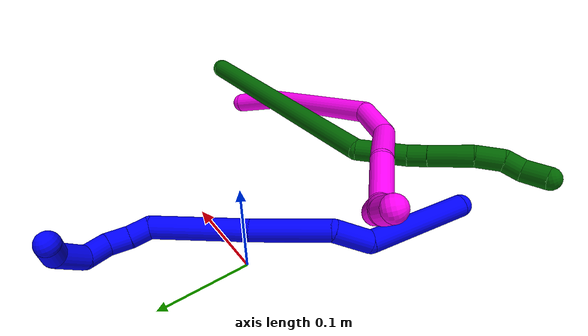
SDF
<sdf version="1.7">
 <world name="default">
  <model name="1">
   <static>0</static>
   <link name="1">
    <collision name="collision-cylinder-e_1_1_4">
     <pose>0.011512 0.057316 0.009499 -1.40655 0.195605 -0.166004</pose>
     <geometry><cylinder><radius>0.0125</radius><length>0.118455</length></cylinder></geometry>
     <surface>
      <friction><ode><mu>1.16</mu><mu2>1.16</mu2><slip1>0</slip1><slip2>0</slip2></ode></friction>
      <contact><ode><kp>1e+06</kp><kd>1</kd><max_vel>0</max_vel><min_depth>0.001</min_depth></ode></contact>
     </surface>
    </collision>
    <visual name="visual-cylinder-e_1_1_4">
     <pose>0.011512 0.057316 0.009499 -1.40655 0.195605 -0.166004</pose>
     <geometry><cylinder><radius>0.0125</radius><length>0.118455</length></cylinder></geometry>
     <material><ambient>0 0 1 1</ambient></material>
    </visual>
    <collision name="collision-cylinder-e_2_4_5">
     <pose>0.033314 0.128475 0.031853 -0.82238 0.498822 -0.221228</pose>
     <geometry><cylinder><radius>0.0125</radius><length>0.043024</length></cylinder></geometry>
     <surface>
      <friction><ode><mu>1.16</mu><mu2>1.16</mu2><slip1>0</slip1><slip2>0</slip2></ode></friction>
      <contact><ode><kp>1e+06</kp><kd>1</kd><max_vel>0</max_vel><min_depth>0.001</min_depth></ode></contact>
     </surface>
    </collision>
    <visual name="visual-cylinder-e_2_4_5">
     <pose>0.033314 0.128475 0.031853 -0.82238 0.498822 -0.221228</pose>
     <geometry><cylinder><radius>0.0125</radius><length>0.043024</length></cylinder></geometry>
     <material><ambient>0 0 1 1</ambient></material>
    </visual>
    <collision name="collision-cylinder-e_3_5_6">
     <pose>0.076528 0.172318 0.049597 -1.40927 0.825285 -0.712656</pose>
     <geometry><cylinder><radius>0.0125</radius><length>0.089617</length></cylinder></geometry>
     <surface>
      <friction><ode><mu>1.16</mu><mu2>1.16</mu2><slip1>0</slip1><slip2>0</slip2></ode></friction>
      <contact><ode><kp>1e+06</kp><kd>1</kd><max_vel>0</max_vel><min_depth>0.001</min_depth></ode></contact>
     </surface>
    </collision>
    <visual name="visual-cylinder-e_3_5_6">
     <pose>0.076528 0.172318 0.049597 -1.40927 0.825285 -0.712656</pose>
     <geometry><cylinder><radius>0.0125</radius><length>0.089617</length></cylinder></geometry>
     <material><ambient>0 0 1 1</ambient></material>
    </visual>
    <collision name="collision-cylinder-e_4_6_7">
     <pose>0.144763 0.241333 0.066909 -1.26252 0.711664 -0.530579</pose>
     <geometry><cylinder><radius>0.0125</radius><length>0.10814</length></cylinder></geometry>
     <surface>
      <friction><ode><mu>1.16</mu><mu2>1.16</mu2><slip1>0</slip1><slip2>0</slip2></ode></friction>
      <contact><ode><kp>1e+06</kp><kd>1</kd><max_vel>0</max_vel><min_depth>0.001</min_depth></ode></contact>
     </surface>
    </collision>
    <visual name="visual-cylinder-e_4_6_7">
     <pose>0.144763 0.241333 0.066909 -1.26252 0.711664 -0.530579</pose>
     <geometry><cylinder><radius>0.0125</radius><length>0.10814</length></cylinder></geometry>
     <material><ambient>0 0 1 1</ambient></material>
    </visual>
    <collision name="collision-cylinder-e_5_7_8">
     <pose>0.181719 0.291596 0.079708 -1.53745 0.14497 -0.14023</pose>
     <geometry><cylinder><radius>0.0125</radius><length>0.022746</length></cylinder></geometry>
     <surface>
      <friction><ode><mu>1.16</mu><mu2>1.16</mu2><slip1>0</slip1><slip2>0</slip2></ode></friction>
      <contact><ode><kp>1e+06</kp><kd>1</kd><max_vel>0</max_vel><min_depth>0.001</min_depth></ode></contact>
     </surface>
    </collision>
    <visual name="visual-cylinder-e_5_7_8">
     <pose>0.181719 0.291596 0.079708 -1.53745 0.14497 -0.14023</pose>
     <geometry><cylinder><radius>0.0125</radius><length>0.022746</length></cylinder></geometry>
     <material><ambient>0 0 1 1</ambient></material>
    </visual>
    <collision name="collision-cylinder-e_6_8_9">
     <pose>0.185759 0.314366 0.082129 -1.39504 0.202022 -0.169478</pose>
     <geometry><cylinder><radius>0.0125</radius><length>0.023892</length></cylinder></geometry>
     <surface>
      <friction><ode><mu>1.16</mu><mu2>1.16</mu2><slip1>0</slip1><slip2>0</slip2></ode></friction>
      <contact><ode><kp>1e+06</kp><kd>1</kd><max_vel>0</max_vel><min_depth>0.001</min_depth></ode></contact>
     </surface>
    </collision>
    <visual name="visual-cylinder-e_6_8_9">
     <pose>0.185759 0.314366 0.082129 -1.39504 0.202022 -0.169478</pose>
     <geometry><cylinder><radius>0.0125</radius><length>0.023892</length></cylinder></geometry>
     <material><ambient>0 0 1 1</ambient></material>
    </visual>
    <collision name="collision-cylinder-e_7_9_10">
     <pose>0.183872 0.338181 0.087084 -1.33845 -0.326958 0.259486</pose>
     <geometry><cylinder><radius>0.0125</radius><length>0.026675</length></cylinder></geometry>
     <surface>
      <friction><ode><mu>1.16</mu><mu2>1.16</mu2><slip1>0</slip1><slip2>0</slip2></ode></friction>
      <contact><ode><kp>1e+06</kp><kd>1</kd><max_vel>0</max_vel><min_depth>0.001</min_depth></ode></contact>
     </surface>
    </collision>
    <visual name="visual-cylinder-e_7_9_10">
     <pose>0.183872 0.338181 0.087084 -1.33845 -0.326958 0.259486</pose>
     <geometry><cylinder><radius>0.0125</radius><length>0.026675</length></cylinder></geometry>
     <material><ambient>0 0 1 1</ambient></material>
    </visual>
    <collision name="collision-cylinder-e_8_10_11">
     <pose>0.174672 0.361281 0.103209 -0.685497 -0.28038 0.100624</pose>
     <geometry><cylinder><radius>0.0125</radius><length>0.035537</length></cylinder></geometry>
     <surface>
      <friction><ode><mu>1.16</mu><mu2>1.16</mu2><slip1>0</slip1><slip2>0</slip2></ode></friction>
      <contact><ode><kp>1e+06</kp><kd>1</kd><max_vel>0</max_vel><min_depth>0.001</min_depth></ode></contact>
     </surface>
    </collision>
    <visual name="visual-cylinder-e_8_10_11">
     <pose>0.174672 0.361281 0.103209 -0.685497 -0.28038 0.100624</pose>
     <geometry><cylinder><radius>0.0125</radius><length>0.035537</length></cylinder></geometry>
     <material><ambient>0 0 1 1</ambient></material>
    </visual>
    <collision name="collision-cylinder-e_9_11_2">
     <pose>0.16003 0.371981 0.129078 0.008617 -0.655353 -0.002929</pose>
     <geometry><cylinder><radius>0.0125</radius><length>0.031915</length></cylinder></geometry>
     <surface>
      <friction><ode><mu>1.16</mu><mu2>1.16</mu2><slip1>0</slip1><slip2>0</slip2></ode></friction>
      <contact><ode><kp>1e+06</kp><kd>1</kd><max_vel>0</max_vel><min_depth>0.001</min_depth></ode></contact>
     </surface>
    </collision>
    <visual name="visual-cylinder-e_9_11_2">
     <pose>0.16003 0.371981 0.129078 0.008617 -0.655353 -0.002929</pose>
     <geometry><cylinder><radius>0.0125</radius><length>0.031915</length></cylinder></geometry>
     <material><ambient>0 0 1 1</ambient></material>
    </visual>
    <collision name="collision-sphere-2">
     <pose>0.150305 0.371872 0.141729 0 -0 0</pose>
     <geometry><sphere><radius>0.0125</radius></sphere></geometry>
     <surface>
      <friction><ode><mu>1.16</mu><mu2>1.16</mu2><slip1>0</slip1><slip2>0</slip2></ode></friction>
      <contact><ode><kp>1e+06</kp><kd>1</kd><max_vel>0</max_vel><min_depth>0.001</min_depth></ode></contact>
     </surface>
    </collision>
    <visual name="visual-sphere-2">
     <pose>0.150305 0.371872 0.141729 0 -0 0</pose>
     <geometry><sphere><radius>0.0125</radius></sphere></geometry>
     <material><ambient>0 0 1 1</ambient></material>
    </visual>
    <collision name="collision-sphere-11">
     <pose>0.169755 0.37209 0.116427 0 -0 0</pose>
     <geometry><sphere><radius>0.0125</radius></sphere></geometry>
     <surface>
      <friction><ode><mu>1.16</mu><mu2>1.16</mu2><slip1>0</slip1><slip2>0</slip2></ode></friction>
      <contact><ode><kp>1e+06</kp><kd>1</kd><max_vel>0</max_vel><min_depth>0.001</min_depth></ode></contact>
     </surface>
    </collision>
    <visual name="visual-sphere-11">
     <pose>0.169755 0.37209 0.116427 0 -0 0</pose>
     <geometry><sphere><radius>0.0125</radius></sphere></geometry>
     <material><ambient>0 0 1 1</ambient></material>
    </visual>
    <collision name="collision-sphere-10">
     <pose>0.179589 0.350472 0.089992 0 -0 0</pose>
     <geometry><sphere><radius>0.0125</radius></sphere></geometry>
     <surface>
      <friction><ode><mu>1.16</mu><mu2>1.16</mu2><slip1>0</slip1><slip2>0</slip2></ode></friction>
      <contact><ode><kp>1e+06</kp><kd>1</kd><max_vel>0</max_vel><min_depth>0.001</min_depth></ode></contact>
     </surface>
    </collision>
    <visual name="visual-sphere-10">
     <pose>0.179589 0.350472 0.089992 0 -0 0</pose>
     <geometry><sphere><radius>0.0125</radius></sphere></geometry>
     <material><ambient>0 0 1 1</ambient></material>
    </visual>
    <collision name="collision-sphere-9">
     <pose>0.188156 0.325889 0.084175 0 -0 0</pose>
     <geometry><sphere><radius>0.0125</radius></sphere></geometry>
     <surface>
      <friction><ode><mu>1.16</mu><mu2>1.16</mu2><slip1>0</slip1><slip2>0</slip2></ode></friction>
      <contact><ode><kp>1e+06</kp><kd>1</kd><max_vel>0</max_vel><min_depth>0.001</min_depth></ode></contact>
     </surface>
    </collision>
    <visual name="visual-sphere-9">
     <pose>0.188156 0.325889 0.084175 0 -0 0</pose>
     <geometry><sphere><radius>0.0125</radius></sphere></geometry>
     <material><ambient>0 0 1 1</ambient></material>
    </visual>
    <collision name="collision-sphere-4">
     <pose>0.023023 0.114633 0.018999 0 -0 0</pose>
     <geometry><sphere><radius>0.0125</radius></sphere></geometry>
     <surface>
      <friction><ode><mu>1.16</mu><mu2>1.16</mu2><slip1>0</slip1><slip2>0</slip2></ode></friction>
      <contact><ode><kp>1e+06</kp><kd>1</kd><max_vel>0</max_vel><min_depth>0.001</min_depth></ode></contact>
     </surface>
    </collision>
    <visual name="visual-sphere-4">
     <pose>0.023023 0.114633 0.018999 0 -0 0</pose>
     <geometry><sphere><radius>0.0125</radius></sphere></geometry>
     <material><ambient>0 0 1 1</ambient></material>
    </visual>
    <collision name="collision-sphere-1">
     <geometry><sphere><radius>0.0125</radius></sphere></geometry>
     <surface>
      <friction><ode><mu>1.16</mu><mu2>1.16</mu2><slip1>0</slip1><slip2>0</slip2></ode></friction>
      <contact><ode><kp>1e+06</kp><kd>1</kd><max_vel>0</max_vel><min_depth>0.001</min_depth></ode></contact>
     </surface>
    </collision>
    <visual name="visual-sphere-1">
     <geometry><sphere><radius>0.0125</radius></sphere></geometry>
     <material><ambient>0 0 1 1</ambient></material>
    </visual>
    <collision name="collision-sphere-8">
     <pose>0.183362 0.302844 0.080083 0 -0 0</pose>
     <geometry><sphere><radius>0.0125</radius></sphere></geometry>
     <surface>
      <friction><ode><mu>1.16</mu><mu2>1.16</mu2><slip1>0</slip1><slip2>0</slip2></ode></friction>
      <contact><ode><kp>1e+06</kp><kd>1</kd><max_vel>0</max_vel><min_depth>0.001</min_depth></ode></contact>
     </surface>
    </collision>
    <visual name="visual-sphere-8">
     <pose>0.183362 0.302844 0.080083 0 -0 0</pose>
     <geometry><sphere><radius>0.0125</radius></sphere></geometry>
     <material><ambient>0 0 1 1</ambient></material>
    </visual>
    <collision name="collision-sphere-5">
     <pose>0.043605 0.142318 0.044708 0 -0 0</pose>
     <geometry><sphere><radius>0.0125</radius></sphere></geometry>
     <surface>
      <friction><ode><mu>1.16</mu><mu2>1.16</mu2><slip1>0</slip1><slip2>0</slip2></ode></friction>
      <contact><ode><kp>1e+06</kp><kd>1</kd><max_vel>0</max_vel><min_depth>0.001</min_depth></ode></contact>
     </surface>
    </collision>
    <visual name="visual-sphere-5">
     <pose>0.043605 0.142318 0.044708 0 -0 0</pose>
     <geometry><sphere><radius>0.0125</radius></sphere></geometry>
     <material><ambient>0 0 1 1</ambient></material>
    </visual>
    <collision name="collision-sphere-6">
     <pose>0.10945 0.202318 0.054485 0 -0 0</pose>
     <geometry><sphere><radius>0.0125</radius></sphere></geometry>
     <surface>
      <friction><ode><mu>1.16</mu><mu2>1.16</mu2><slip1>0</slip1><slip2>0</slip2></ode></friction>
      <contact><ode><kp>1e+06</kp><kd>1</kd><max_vel>0</max_vel><min_depth>0.001</min_depth></ode></contact>
     </surface>
    </collision>
    <visual name="visual-sphere-6">
     <pose>0.10945 0.202318 0.054485 0 -0 0</pose>
     <geometry><sphere><radius>0.0125</radius></sphere></geometry>
     <material><ambient>0 0 1 1</ambient></material>
    </visual>
    <collision name="collision-sphere-7">
     <pose>0.180076 0.280348 0.079332 0 -0 0</pose>
     <geometry><sphere><radius>0.0125</radius></sphere></geometry>
     <surface>
      <friction><ode><mu>1.16</mu><mu2>1.16</mu2><slip1>0</slip1><slip2>0</slip2></ode></friction>
      <contact><ode><kp>1e+06</kp><kd>1</kd><max_vel>0</max_vel><min_depth>0.001</min_depth></ode></contact>
     </surface>
    </collision>
    <visual name="visual-sphere-7">
     <pose>0.180076 0.280348 0.079332 0 -0 0</pose>
     <geometry><sphere><radius>0.0125</radius></sphere></geometry>
     <material><ambient>0 0 1 1</ambient></material>
    </visual>
    <inertial>
     <pose>0.100201 0.203464 0.056123 0 -0 0</pose>
     <mass>0.5</mass>
     <inertia>
      <ixx>0.000181</ixx>
      <ixy>0</ixy>
      <ixz>0</ixz>
      <iyy>7.9e-05</iyy>
      <iyz>0</iyz>
      <izz>-0.00041</izz>
     </inertia>
    </inertial>
   </link>
   <pose>-0.076896 -0.233269 0.014157 -0.147599 0.199568 0.039539</pose>
  </model>
  <model name="6">
   <static>0</static>
   <link name="6">
    <collision name="collision-cylinder-e_1_1_4">
     <pose>-0.08357 -0.043943 -0.106606 2.75062 -0.62715 -2.04517</pose>
     <geometry><cylinder><radius>0.0125</radius><length>0.284814</length></cylinder></geometry>
     <surface>
      <friction><ode><mu>1.16</mu><mu2>1.16</mu2><slip1>0</slip1><slip2>0</slip2></ode></friction>
      <contact><ode><kp>1e+06</kp><kd>1</kd><max_vel>0</max_vel><min_depth>0.001</min_depth></ode></contact>
     </surface>
    </collision>
    <visual name="visual-cylinder-e_1_1_4">
     <pose>-0.08357 -0.043943 -0.106606 2.75062 -0.62715 -2.04517</pose>
     <geometry><cylinder><radius>0.0125</radius><length>0.284814</length></cylinder></geometry>
     <material><ambient>0 0.392157 0.003922 1</ambient></material>
    </visual>
    <collision name="collision-cylinder-e_2_4_5">
     <pose>-0.178343 -0.081102 -0.240082 -2.8943 -0.38417 2.00436</pose>
     <geometry><cylinder><radius>0.0125</radius><length>0.059784</length></cylinder></geometry>
     <surface>
      <friction><ode><mu>1.16</mu><mu2>1.16</mu2><slip1>0</slip1><slip2>0</slip2></ode></friction>
      <contact><ode><kp>1e+06</kp><kd>1</kd><max_vel>0</max_vel><min_depth>0.001</min_depth></ode></contact>
     </surface>
    </collision>
    <visual name="visual-cylinder-e_2_4_5">
     <pose>-0.178343 -0.081102 -0.240082 -2.8943 -0.38417 2.00436</pose>
     <geometry><cylinder><radius>0.0125</radius><length>0.059784</length></cylinder></geometry>
     <material><ambient>0 0.392157 0.003922 1</ambient></material>
    </visual>
    <collision name="collision-cylinder-e_3_5_6">
     <pose>-0.192643 -0.072918 -0.277829 -3.01351 -0.275191 2.27417</pose>
     <geometry><cylinder><radius>0.0125</radius><length>0.02279</length></cylinder></geometry>
     <surface>
      <friction><ode><mu>1.16</mu><mu2>1.16</mu2><slip1>0</slip1><slip2>0</slip2></ode></friction>
      <contact><ode><kp>1e+06</kp><kd>1</kd><max_vel>0</max_vel><min_depth>0.001</min_depth></ode></contact>
     </surface>
    </collision>
    <visual name="visual-cylinder-e_3_5_6">
     <pose>-0.192643 -0.072918 -0.277829 -3.01351 -0.275191 2.27417</pose>
     <geometry><cylinder><radius>0.0125</radius><length>0.02279</length></cylinder></geometry>
     <material><ambient>0 0.392157 0.003922 1</ambient></material>
    </visual>
    <collision name="collision-cylinder-e_4_6_7">
     <pose>-0.202283 -0.068003 -0.312813 -2.99686 -0.262404 2.13689</pose>
     <geometry><cylinder><radius>0.0125</radius><length>0.050453</length></cylinder></geometry>
     <surface>
      <friction><ode><mu>1.16</mu><mu2>1.16</mu2><slip1>0</slip1><slip2>0</slip2></ode></friction>
      <contact><ode><kp>1e+06</kp><kd>1</kd><max_vel>0</max_vel><min_depth>0.001</min_depth></ode></contact>
     </surface>
    </collision>
    <visual name="visual-cylinder-e_4_6_7">
     <pose>-0.202283 -0.068003 -0.312813 -2.99686 -0.262404 2.13689</pose>
     <geometry><cylinder><radius>0.0125</radius><length>0.050453</length></cylinder></geometry>
     <material><ambient>0 0.392157 0.003922 1</ambient></material>
    </visual>
    <collision name="collision-cylinder-e_5_7_8">
     <pose>-0.215157 -0.060994 -0.350663 -2.89252 -0.419874 2.07923</pose>
     <geometry><cylinder><radius>0.0125</radius><length>0.031056</length></cylinder></geometry>
     <surface>
      <friction><ode><mu>1.16</mu><mu2>1.16</mu2><slip1>0</slip1><slip2>0</slip2></ode></friction>
      <contact><ode><kp>1e+06</kp><kd>1</kd><max_vel>0</max_vel><min_depth>0.001</min_depth></ode></contact>
     </surface>
    </collision>
    <visual name="visual-cylinder-e_5_7_8">
     <pose>-0.215157 -0.060994 -0.350663 -2.89252 -0.419874 2.07923</pose>
     <geometry><cylinder><radius>0.0125</radius><length>0.031056</length></cylinder></geometry>
     <material><ambient>0 0.392157 0.003922 1</ambient></material>
    </visual>
    <collision name="collision-cylinder-e_6_8_9">
     <pose>-0.229149 -0.056283 -0.372029 -2.98342 -0.781586 2.76151</pose>
     <geometry><cylinder><radius>0.0125</radius><length>0.021754</length></cylinder></geometry>
     <surface>
      <friction><ode><mu>1.16</mu><mu2>1.16</mu2><slip1>0</slip1><slip2>0</slip2></ode></friction>
      <contact><ode><kp>1e+06</kp><kd>1</kd><max_vel>0</max_vel><min_depth>0.001</min_depth></ode></contact>
     </surface>
    </collision>
    <visual name="visual-cylinder-e_6_8_9">
     <pose>-0.229149 -0.056283 -0.372029 -2.98342 -0.781586 2.76151</pose>
     <geometry><cylinder><radius>0.0125</radius><length>0.021754</length></cylinder></geometry>
     <material><ambient>0 0.392157 0.003922 1</ambient></material>
    </visual>
    <collision name="collision-cylinder-e_7_9_2">
     <pose>-0.243628 -0.058053 -0.3923 2.90973 -0.483175 -2.25859</pose>
     <geometry><cylinder><radius>0.0125</radius><length>0.029349</length></cylinder></geometry>
     <surface>
      <friction><ode><mu>1.16</mu><mu2>1.16</mu2><slip1>0</slip1><slip2>0</slip2></ode></friction>
      <contact><ode><kp>1e+06</kp><kd>1</kd><max_vel>0</max_vel><min_depth>0.001</min_depth></ode></contact>
     </surface>
    </collision>
    <visual name="visual-cylinder-e_7_9_2">
     <pose>-0.243628 -0.058053 -0.3923 2.90973 -0.483175 -2.25859</pose>
     <geometry><cylinder><radius>0.0125</radius><length>0.029349</length></cylinder></geometry>
     <material><ambient>0 0.392157 0.003922 1</ambient></material>
    </visual>
    <collision name="collision-sphere-2">
     <pose>-0.250446 -0.061039 -0.404947 0 -0 0</pose>
     <geometry><sphere><radius>0.0125</radius></sphere></geometry>
     <surface>
      <friction><ode><mu>1.16</mu><mu2>1.16</mu2><slip1>0</slip1><slip2>0</slip2></ode></friction>
      <contact><ode><kp>1e+06</kp><kd>1</kd><max_vel>0</max_vel><min_depth>0.001</min_depth></ode></contact>
     </surface>
    </collision>
    <visual name="visual-sphere-2">
     <pose>-0.250446 -0.061039 -0.404947 0 -0 0</pose>
     <geometry><sphere><radius>0.0125</radius></sphere></geometry>
     <material><ambient>0 0.392157 0.003922 1</ambient></material>
    </visual>
    <collision name="collision-sphere-9">
     <pose>-0.23681 -0.055067 -0.379653 0 -0 0</pose>
     <geometry><sphere><radius>0.0125</radius></sphere></geometry>
     <surface>
      <friction><ode><mu>1.16</mu><mu2>1.16</mu2><slip1>0</slip1><slip2>0</slip2></ode></friction>
      <contact><ode><kp>1e+06</kp><kd>1</kd><max_vel>0</max_vel><min_depth>0.001</min_depth></ode></contact>
     </surface>
    </collision>
    <visual name="visual-sphere-9">
     <pose>-0.23681 -0.055067 -0.379653 0 -0 0</pose>
     <geometry><sphere><radius>0.0125</radius></sphere></geometry>
     <material><ambient>0 0.392157 0.003922 1</ambient></material>
    </visual>
    <collision name="collision-sphere-4">
     <pose>-0.16714 -0.087886 -0.213212 0 -0 0</pose>
     <geometry><sphere><radius>0.0125</radius></sphere></geometry>
     <surface>
      <friction><ode><mu>1.16</mu><mu2>1.16</mu2><slip1>0</slip1><slip2>0</slip2></ode></friction>
      <contact><ode><kp>1e+06</kp><kd>1</kd><max_vel>0</max_vel><min_depth>0.001</min_depth></ode></contact>
     </surface>
    </collision>
    <visual name="visual-sphere-4">
     <pose>-0.16714 -0.087886 -0.213212 0 -0 0</pose>
     <geometry><sphere><radius>0.0125</radius></sphere></geometry>
     <material><ambient>0 0.392157 0.003922 1</ambient></material>
    </visual>
    <collision name="collision-sphere-1">
     <geometry><sphere><radius>0.0125</radius></sphere></geometry>
     <surface>
      <friction><ode><mu>1.16</mu><mu2>1.16</mu2><slip1>0</slip1><slip2>0</slip2></ode></friction>
      <contact><ode><kp>1e+06</kp><kd>1</kd><max_vel>0</max_vel><min_depth>0.001</min_depth></ode></contact>
     </surface>
    </collision>
    <visual name="visual-sphere-1">
     <geometry><sphere><radius>0.0125</radius></sphere></geometry>
     <material><ambient>0 0.392157 0.003922 1</ambient></material>
    </visual>
    <collision name="collision-sphere-8">
     <pose>-0.221487 -0.057499 -0.364405 0 -0 0</pose>
     <geometry><sphere><radius>0.0125</radius></sphere></geometry>
     <surface>
      <friction><ode><mu>1.16</mu><mu2>1.16</mu2><slip1>0</slip1><slip2>0</slip2></ode></friction>
      <contact><ode><kp>1e+06</kp><kd>1</kd><max_vel>0</max_vel><min_depth>0.001</min_depth></ode></contact>
     </surface>
    </collision>
    <visual name="visual-sphere-8">
     <pose>-0.221487 -0.057499 -0.364405 0 -0 0</pose>
     <geometry><sphere><radius>0.0125</radius></sphere></geometry>
     <material><ambient>0 0.392157 0.003922 1</ambient></material>
    </visual>
    <collision name="collision-sphere-5">
     <pose>-0.189547 -0.074319 -0.266952 0 -0 0</pose>
     <geometry><sphere><radius>0.0125</radius></sphere></geometry>
     <surface>
      <friction><ode><mu>1.16</mu><mu2>1.16</mu2><slip1>0</slip1><slip2>0</slip2></ode></friction>
      <contact><ode><kp>1e+06</kp><kd>1</kd><max_vel>0</max_vel><min_depth>0.001</min_depth></ode></contact>
     </surface>
    </collision>
    <visual name="visual-sphere-5">
     <pose>-0.189547 -0.074319 -0.266952 0 -0 0</pose>
     <geometry><sphere><radius>0.0125</radius></sphere></geometry>
     <material><ambient>0 0.392157 0.003922 1</ambient></material>
    </visual>
    <collision name="collision-sphere-6">
     <pose>-0.195739 -0.071517 -0.288705 0 -0 0</pose>
     <geometry><sphere><radius>0.0125</radius></sphere></geometry>
     <surface>
      <friction><ode><mu>1.16</mu><mu2>1.16</mu2><slip1>0</slip1><slip2>0</slip2></ode></friction>
      <contact><ode><kp>1e+06</kp><kd>1</kd><max_vel>0</max_vel><min_depth>0.001</min_depth></ode></contact>
     </surface>
    </collision>
    <visual name="visual-sphere-6">
     <pose>-0.195739 -0.071517 -0.288705 0 -0 0</pose>
     <geometry><sphere><radius>0.0125</radius></sphere></geometry>
     <material><ambient>0 0.392157 0.003922 1</ambient></material>
    </visual>
    <collision name="collision-sphere-7">
     <pose>-0.208827 -0.06449 -0.336921 0 -0 0</pose>
     <geometry><sphere><radius>0.0125</radius></sphere></geometry>
     <surface>
      <friction><ode><mu>1.16</mu><mu2>1.16</mu2><slip1>0</slip1><slip2>0</slip2></ode></friction>
      <contact><ode><kp>1e+06</kp><kd>1</kd><max_vel>0</max_vel><min_depth>0.001</min_depth></ode></contact>
     </surface>
    </collision>
    <visual name="visual-sphere-7">
     <pose>-0.208827 -0.06449 -0.336921 0 -0 0</pose>
     <geometry><sphere><radius>0.0125</radius></sphere></geometry>
     <material><ambient>0 0.392157 0.003922 1</ambient></material>
    </visual>
    <inertial>
     <pose>-0.135754 -0.054559 -0.194654 0 -0 0</pose>
     <mass>0.5</mass>
     <inertia>
      <ixx>-0.002121</ixx>
      <ixy>0</ixy>
      <ixz>0</ixz>
      <iyy>-0.000142</iyy>
      <iyz>0</iyz>
      <izz>0.001711</izz>
     </inertia>
    </inertial>
   </link>
   <pose>0.319457 -0.150492 0.044386 -2.42785 -0.88977 -0.182396</pose>
  </model>
  <model name="10">
   <static>0</static>
   <link name="10">
    <collision name="collision-cylinder-e_1_1_4">
     <pose>-0.006819 0.005065 0.026786 -0.18687 -0.245098 0.023082</pose>
     <geometry><cylinder><radius>0.0125</radius><length>0.0562</length></cylinder></geometry>
     <surface>
      <friction><ode><mu>1.16</mu><mu2>1.16</mu2><slip1>0</slip1><slip2>0</slip2></ode></friction>
      <contact><ode><kp>1e+06</kp><kd>1</kd><max_vel>0</max_vel><min_depth>0.001</min_depth></ode></contact>
     </surface>
    </collision>
    <visual name="visual-cylinder-e_1_1_4">
     <pose>-0.006819 0.005065 0.026786 -0.18687 -0.245098 0.023082</pose>
     <geometry><cylinder><radius>0.0125</radius><length>0.0562</length></cylinder></geometry>
     <material><ambient>1 0 0.964706 1</ambient></material>
    </visual>
    <collision name="collision-cylinder-e_2_4_5">
     <pose>-0.050715 0.040911 0.119716 -0.435568 -0.4702 0.105913</pose>
     <geometry><cylinder><radius>0.0125</radius><length>0.163675</length></cylinder></geometry>
     <surface>
      <friction><ode><mu>1.16</mu><mu2>1.16</mu2><slip1>0</slip1><slip2>0</slip2></ode></friction>
      <contact><ode><kp>1e+06</kp><kd>1</kd><max_vel>0</max_vel><min_depth>0.001</min_depth></ode></contact>
     </surface>
    </collision>
    <visual name="visual-cylinder-e_2_4_5">
     <pose>-0.050715 0.040911 0.119716 -0.435568 -0.4702 0.105913</pose>
     <geometry><cylinder><radius>0.0125</radius><length>0.163675</length></cylinder></geometry>
     <material><ambient>1 0 0.964706 1</ambient></material>
    </visual>
    <collision name="collision-cylinder-e_3_5_6">
     <pose>-0.107911 0.084935 0.196345 -0.901073 -0.872405 0.443551</pose>
     <geometry><cylinder><radius>0.0125</radius><length>0.052538</length></cylinder></geometry>
     <surface>
      <friction><ode><mu>1.16</mu><mu2>1.16</mu2><slip1>0</slip1><slip2>0</slip2></ode></friction>
      <contact><ode><kp>1e+06</kp><kd>1</kd><max_vel>0</max_vel><min_depth>0.001</min_depth></ode></contact>
     </surface>
    </collision>
    <visual name="visual-cylinder-e_3_5_6">
     <pose>-0.107911 0.084935 0.196345 -0.901073 -0.872405 0.443551</pose>
     <geometry><cylinder><radius>0.0125</radius><length>0.052538</length></cylinder></geometry>
     <material><ambient>1 0 0.964706 1</ambient></material>
    </visual>
    <collision name="collision-cylinder-e_4_6_7">
     <pose>-0.149162 0.126214 0.207031 -1.56364 -0.645885 0.641593</pose>
     <geometry><cylinder><radius>0.0125</radius><length>0.07022</length></cylinder></geometry>
     <surface>
      <friction><ode><mu>1.16</mu><mu2>1.16</mu2><slip1>0</slip1><slip2>0</slip2></ode></friction>
      <contact><ode><kp>1e+06</kp><kd>1</kd><max_vel>0</max_vel><min_depth>0.001</min_depth></ode></contact>
     </surface>
    </collision>
    <visual name="visual-cylinder-e_4_6_7">
     <pose>-0.149162 0.126214 0.207031 -1.56364 -0.645885 0.641593</pose>
     <geometry><cylinder><radius>0.0125</radius><length>0.07022</length></cylinder></geometry>
     <material><ambient>1 0 0.964706 1</ambient></material>
    </visual>
    <collision name="collision-cylinder-e_5_7_8">
     <pose>-0.195016 0.170194 0.205203 -1.69731 -0.994325 1.10423</pose>
     <geometry><cylinder><radius>0.0125</radius><length>0.058972</length></cylinder></geometry>
     <surface>
      <friction><ode><mu>1.16</mu><mu2>1.16</mu2><slip1>0</slip1><slip2>0</slip2></ode></friction>
      <contact><ode><kp>1e+06</kp><kd>1</kd><max_vel>0</max_vel><min_depth>0.001</min_depth></ode></contact>
     </surface>
    </collision>
    <visual name="visual-cylinder-e_5_7_8">
     <pose>-0.195016 0.170194 0.205203 -1.69731 -0.994325 1.10423</pose>
     <geometry><cylinder><radius>0.0125</radius><length>0.058972</length></cylinder></geometry>
     <material><ambient>1 0 0.964706 1</ambient></material>
    </visual>
    <collision name="collision-cylinder-e_6_8_9">
     <pose>-0.224902 0.198072 0.201731 -1.69128 -0.405822 0.456225</pose>
     <geometry><cylinder><radius>0.0125</radius><length>0.026167</length></cylinder></geometry>
     <surface>
      <friction><ode><mu>1.16</mu><mu2>1.16</mu2><slip1>0</slip1><slip2>0</slip2></ode></friction>
      <contact><ode><kp>1e+06</kp><kd>1</kd><max_vel>0</max_vel><min_depth>0.001</min_depth></ode></contact>
     </surface>
    </collision>
    <visual name="visual-cylinder-e_6_8_9">
     <pose>-0.224902 0.198072 0.201731 -1.69128 -0.405822 0.456225</pose>
     <geometry><cylinder><radius>0.0125</radius><length>0.026167</length></cylinder></geometry>
     <material><ambient>1 0 0.964706 1</ambient></material>
    </visual>
    <collision name="collision-cylinder-e_7_9_10">
     <pose>-0.230974 0.224449 0.206013 -1.19328 -0.058337 0.03963</pose>
     <geometry><cylinder><radius>0.0125</radius><length>0.031127</length></cylinder></geometry>
     <surface>
      <friction><ode><mu>1.16</mu><mu2>1.16</mu2><slip1>0</slip1><slip2>0</slip2></ode></friction>
      <contact><ode><kp>1e+06</kp><kd>1</kd><max_vel>0</max_vel><min_depth>0.001</min_depth></ode></contact>
     </surface>
    </collision>
    <visual name="visual-cylinder-e_7_9_10">
     <pose>-0.230974 0.224449 0.206013 -1.19328 -0.058337 0.03963</pose>
     <geometry><cylinder><radius>0.0125</radius><length>0.031127</length></cylinder></geometry>
     <material><ambient>1 0 0.964706 1</ambient></material>
    </visual>
    <collision name="collision-cylinder-e_8_10_11">
     <pose>-0.234884 0.24877 0.21382 -1.36322 -0.289041 0.235065</pose>
     <geometry><cylinder><radius>0.0125</radius><length>0.021064</length></cylinder></geometry>
     <surface>
      <friction><ode><mu>1.16</mu><mu2>1.16</mu2><slip1>0</slip1><slip2>0</slip2></ode></friction>
      <contact><ode><kp>1e+06</kp><kd>1</kd><max_vel>0</max_vel><min_depth>0.001</min_depth></ode></contact>
     </surface>
    </collision>
    <visual name="visual-cylinder-e_8_10_11">
     <pose>-0.234884 0.24877 0.21382 -1.36322 -0.289041 0.235065</pose>
     <geometry><cylinder><radius>0.0125</radius><length>0.021064</length></cylinder></geometry>
     <material><ambient>1 0 0.964706 1</ambient></material>
    </visual>
    <collision name="collision-cylinder-e_9_11_2">
     <pose>-0.239079 0.266729 0.221701 -0.948276 -0.119428 0.061342</pose>
     <geometry><cylinder><radius>0.0125</radius><length>0.020038</length></cylinder></geometry>
     <surface>
      <friction><ode><mu>1.16</mu><mu2>1.16</mu2><slip1>0</slip1><slip2>0</slip2></ode></friction>
      <contact><ode><kp>1e+06</kp><kd>1</kd><max_vel>0</max_vel><min_depth>0.001</min_depth></ode></contact>
     </surface>
    </collision>
    <visual name="visual-cylinder-e_9_11_2">
     <pose>-0.239079 0.266729 0.221701 -0.948276 -0.119428 0.061342</pose>
     <geometry><cylinder><radius>0.0125</radius><length>0.020038</length></cylinder></geometry>
     <material><ambient>1 0 0.964706 1</ambient></material>
    </visual>
    <collision name="collision-sphere-2">
     <pose>-0.240273 0.274811 0.227501 0 -0 0</pose>
     <geometry><sphere><radius>0.0125</radius></sphere></geometry>
     <surface>
      <friction><ode><mu>1.16</mu><mu2>1.16</mu2><slip1>0</slip1><slip2>0</slip2></ode></friction>
      <contact><ode><kp>1e+06</kp><kd>1</kd><max_vel>0</max_vel><min_depth>0.001</min_depth></ode></contact>
     </surface>
    </collision>
    <visual name="visual-sphere-2">
     <pose>-0.240273 0.274811 0.227501 0 -0 0</pose>
     <geometry><sphere><radius>0.0125</radius></sphere></geometry>
     <material><ambient>1 0 0.964706 1</ambient></material>
    </visual>
    <collision name="collision-sphere-11">
     <pose>-0.237886 0.258648 0.215901 0 -0 0</pose>
     <geometry><sphere><radius>0.0125</radius></sphere></geometry>
     <surface>
      <friction><ode><mu>1.16</mu><mu2>1.16</mu2><slip1>0</slip1><slip2>0</slip2></ode></friction>
      <contact><ode><kp>1e+06</kp><kd>1</kd><max_vel>0</max_vel><min_depth>0.001</min_depth></ode></contact>
     </surface>
    </collision>
    <visual name="visual-sphere-11">
     <pose>-0.237886 0.258648 0.215901 0 -0 0</pose>
     <geometry><sphere><radius>0.0125</radius></sphere></geometry>
     <material><ambient>1 0 0.964706 1</ambient></material>
    </visual>
    <collision name="collision-sphere-10">
     <pose>-0.231882 0.238891 0.21174 0 -0 0</pose>
     <geometry><sphere><radius>0.0125</radius></sphere></geometry>
     <surface>
      <friction><ode><mu>1.16</mu><mu2>1.16</mu2><slip1>0</slip1><slip2>0</slip2></ode></friction>
      <contact><ode><kp>1e+06</kp><kd>1</kd><max_vel>0</max_vel><min_depth>0.001</min_depth></ode></contact>
     </surface>
    </collision>
    <visual name="visual-sphere-10">
     <pose>-0.231882 0.238891 0.21174 0 -0 0</pose>
     <geometry><sphere><radius>0.0125</radius></sphere></geometry>
     <material><ambient>1 0 0.964706 1</ambient></material>
    </visual>
    <collision name="collision-sphere-9">
     <pose>-0.230067 0.210006 0.200286 0 -0 0</pose>
     <geometry><sphere><radius>0.0125</radius></sphere></geometry>
     <surface>
      <friction><ode><mu>1.16</mu><mu2>1.16</mu2><slip1>0</slip1><slip2>0</slip2></ode></friction>
      <contact><ode><kp>1e+06</kp><kd>1</kd><max_vel>0</max_vel><min_depth>0.001</min_depth></ode></contact>
     </surface>
    </collision>
    <visual name="visual-sphere-9">
     <pose>-0.230067 0.210006 0.200286 0 -0 0</pose>
     <geometry><sphere><radius>0.0125</radius></sphere></geometry>
     <material><ambient>1 0 0.964706 1</ambient></material>
    </visual>
    <collision name="collision-sphere-4">
     <pose>-0.013637 0.010129 0.053572 0 -0 0</pose>
     <geometry><sphere><radius>0.0125</radius></sphere></geometry>
     <surface>
      <friction><ode><mu>1.16</mu><mu2>1.16</mu2><slip1>0</slip1><slip2>0</slip2></ode></friction>
      <contact><ode><kp>1e+06</kp><kd>1</kd><max_vel>0</max_vel><min_depth>0.001</min_depth></ode></contact>
     </surface>
    </collision>
    <visual name="visual-sphere-4">
     <pose>-0.013637 0.010129 0.053572 0 -0 0</pose>
     <geometry><sphere><radius>0.0125</radius></sphere></geometry>
     <material><ambient>1 0 0.964706 1</ambient></material>
    </visual>
    <collision name="collision-sphere-1">
     <geometry><sphere><radius>0.0125</radius></sphere></geometry>
     <surface>
      <friction><ode><mu>1.16</mu><mu2>1.16</mu2><slip1>0</slip1><slip2>0</slip2></ode></friction>
      <contact><ode><kp>1e+06</kp><kd>1</kd><max_vel>0</max_vel><min_depth>0.001</min_depth></ode></contact>
     </surface>
    </collision>
    <visual name="visual-sphere-1">
     <geometry><sphere><radius>0.0125</radius></sphere></geometry>
     <material><ambient>1 0 0.964706 1</ambient></material>
    </visual>
    <collision name="collision-sphere-8">
     <pose>-0.219737 0.186138 0.203176 0 -0 0</pose>
     <geometry><sphere><radius>0.0125</radius></sphere></geometry>
     <surface>
      <friction><ode><mu>1.16</mu><mu2>1.16</mu2><slip1>0</slip1><slip2>0</slip2></ode></friction>
      <contact><ode><kp>1e+06</kp><kd>1</kd><max_vel>0</max_vel><min_depth>0.001</min_depth></ode></contact>
     </surface>
    </collision>
    <visual name="visual-sphere-8">
     <pose>-0.219737 0.186138 0.203176 0 -0 0</pose>
     <geometry><sphere><radius>0.0125</radius></sphere></geometry>
     <material><ambient>1 0 0.964706 1</ambient></material>
    </visual>
    <collision name="collision-sphere-5">
     <pose>-0.087792 0.071693 0.18586 0 -0 0</pose>
     <geometry><sphere><radius>0.0125</radius></sphere></geometry>
     <surface>
      <friction><ode><mu>1.16</mu><mu2>1.16</mu2><slip1>0</slip1><slip2>0</slip2></ode></friction>
      <contact><ode><kp>1e+06</kp><kd>1</kd><max_vel>0</max_vel><min_depth>0.001</min_depth></ode></contact>
     </surface>
    </collision>
    <visual name="visual-sphere-5">
     <pose>-0.087792 0.071693 0.18586 0 -0 0</pose>
     <geometry><sphere><radius>0.0125</radius></sphere></geometry>
     <material><ambient>1 0 0.964706 1</ambient></material>
    </visual>
    <collision name="collision-sphere-6">
     <pose>-0.12803 0.098177 0.20683 0 -0 0</pose>
     <geometry><sphere><radius>0.0125</radius></sphere></geometry>
     <surface>
      <friction><ode><mu>1.16</mu><mu2>1.16</mu2><slip1>0</slip1><slip2>0</slip2></ode></friction>
      <contact><ode><kp>1e+06</kp><kd>1</kd><max_vel>0</max_vel><min_depth>0.001</min_depth></ode></contact>
     </surface>
    </collision>
    <visual name="visual-sphere-6">
     <pose>-0.12803 0.098177 0.20683 0 -0 0</pose>
     <geometry><sphere><radius>0.0125</radius></sphere></geometry>
     <material><ambient>1 0 0.964706 1</ambient></material>
    </visual>
    <collision name="collision-sphere-7">
     <pose>-0.170295 0.154251 0.207231 0 -0 0</pose>
     <geometry><sphere><radius>0.0125</radius></sphere></geometry>
     <surface>
      <friction><ode><mu>1.16</mu><mu2>1.16</mu2><slip1>0</slip1><slip2>0</slip2></ode></friction>
      <contact><ode><kp>1e+06</kp><kd>1</kd><max_vel>0</max_vel><min_depth>0.001</min_depth></ode></contact>
     </surface>
    </collision>
    <visual name="visual-sphere-7">
     <pose>-0.170295 0.154251 0.207231 0 -0 0</pose>
     <geometry><sphere><radius>0.0125</radius></sphere></geometry>
     <material><ambient>1 0 0.964706 1</ambient></material>
    </visual>
    <inertial>
     <pose>-0.118281 0.106193 0.157384 0 -0 0</pose>
     <mass>0.5</mass>
     <inertia>
      <ixx>0.000435</ixx>
      <ixy>0</ixy>
      <ixz>0</ixz>
      <iyy>0.000486</iyy>
      <iyz>0</iyz>
      <izz>4.4e-05</izz>
     </inertia>
    </inertial>
   </link>
   <pose>0.264323 -0.150094 0.01224 1.11599 -0.648839 -0.421917</pose>
  </model>
 </world>
</sdf>
